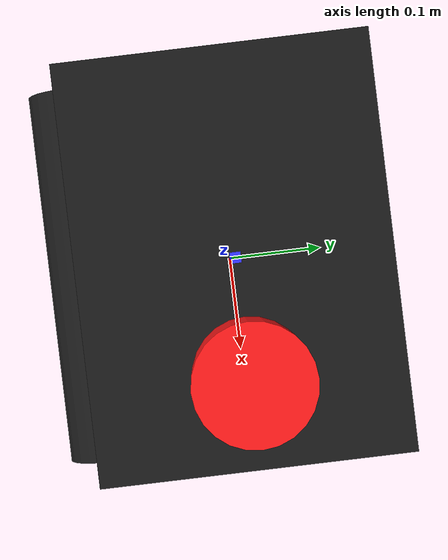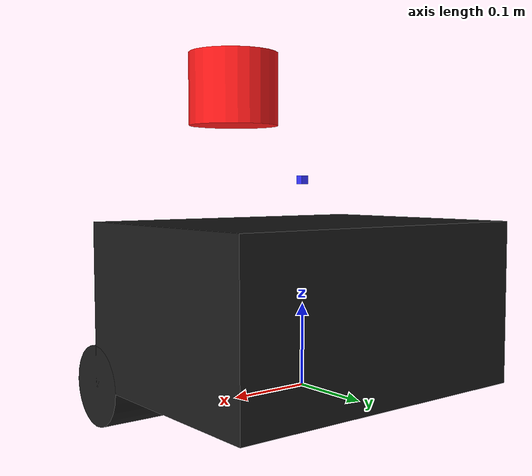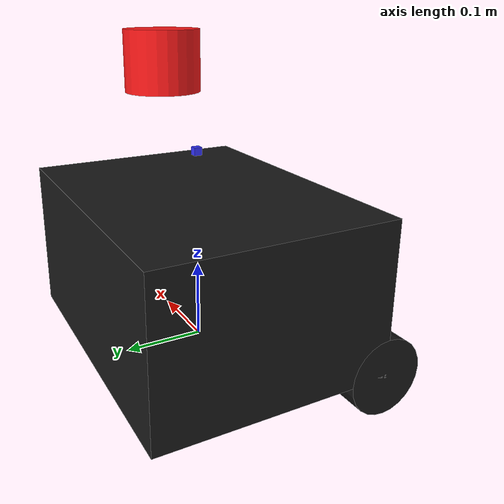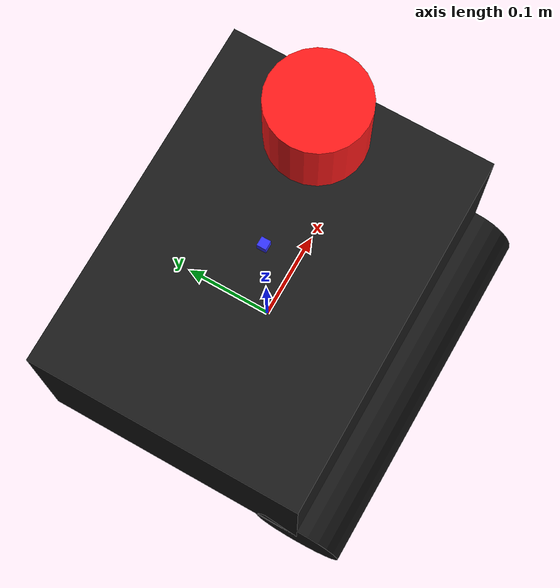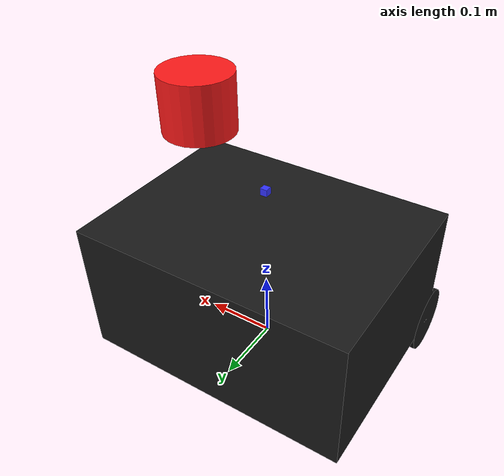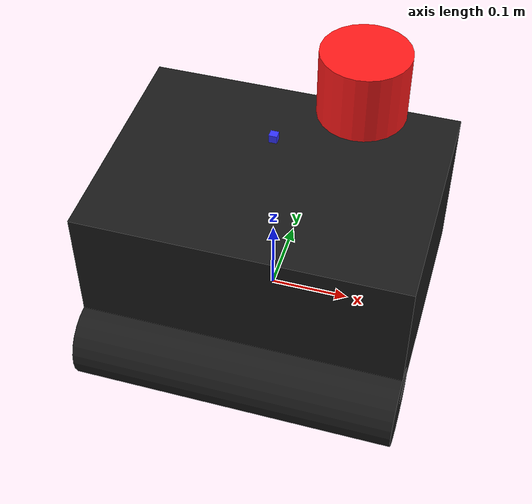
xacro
<?xml version="1.0"?>

<!-- テスト用。robocupのロボット用ではない -->

<robot name="crawler_robot" xmlns:xacro="http://www.ros.org/wiki/xacro">

  <xacro:property name="M_PI" value="3.14159265359"/>
  <xacro:property name="BASE_LENGTH" value="0.40"/>
  <xacro:property name="BASE_WIDTH" value="0.30"/>
  <xacro:property name="BASE_HEIGHT" value="0.20"/>
  <xacro:property name="LIDAR_HEIGHT" value="0.10"/>  <xacro:property name="TRACK_RADIUS" value="0.05"/>

  <material name="Black"> <color rgba="0.1 0.1 0.1 1.0"/> </material>
  <material name="Blue"> <color rgba="0.2 0.2 1.0 1.0"/> </material>
  <material name="Red"> <color rgba="1.0 0.1 0.1 1.0"/> </material>

  <link name="base_link">
    <visual>
      <origin xyz="0 0 ${BASE_HEIGHT/2}" rpy="0 0 0"/>
      <geometry>
        <box size="${BASE_LENGTH} ${BASE_WIDTH} ${BASE_HEIGHT}"/>
      </geometry>
      <material name="Black"/>
    </visual>
    </link>

  <link name="odom"/>
  <joint name="odom_joint" type="fixed">
    <parent link="odom"/>
    <child link="base_link"/>
    <origin xyz="0 0 0" rpy="0 0 0"/>
  </joint>

  <link name="imu_link">
    <visual>
      <origin xyz="0 0 0" rpy="0 0 0"/>
      <geometry>
        <box size="0.01 0.01 0.01"/>
      </geometry>
      <material name="Blue"/>
    </visual>
  </link>

  <joint name="imu_joint" type="fixed">
    <parent link="base_link"/>
    <child link="imu_link"/>
    <origin xyz="0 0 ${BASE_HEIGHT + 0.05}" rpy="0 0 0"/>
  </joint>

  <link name="lidar_link">
    <visual>
      <origin xyz="0 0 0" rpy="0 0 0"/>
      <geometry>
        <cylinder radius="0.05" length="0.08"/>
      </geometry>
      <material name="Red"/>
    </visual>
  </link>

  <joint name="lidar_joint" type="fixed">
    <parent link="base_link"/>
    <child link="lidar_link"/>
    <origin xyz="${BASE_LENGTH/4} 0 ${BASE_HEIGHT + 0.15}" rpy="0 0 0"/>
  </joint>

  <link name="right_track_link">
    <visual>
      <origin xyz="0 0 0" rpy="0 ${M_PI/2} 0"/>
      <geometry>
        <cylinder radius="${TRACK_RADIUS}" length="${BASE_LENGTH}"/>
      </geometry>
      <material name="Black"/>
    </visual>
  </link>

  <joint name="right_track_joint" type="continuous">
    <parent link="base_link"/>
    <child link="right_track_link"/>
    <origin xyz="0 ${-(BASE_WIDTH/2)} 0" rpy="0 0 0"/>
    <axis xyz="0 1 0"/>
  </joint>

  </robot>
